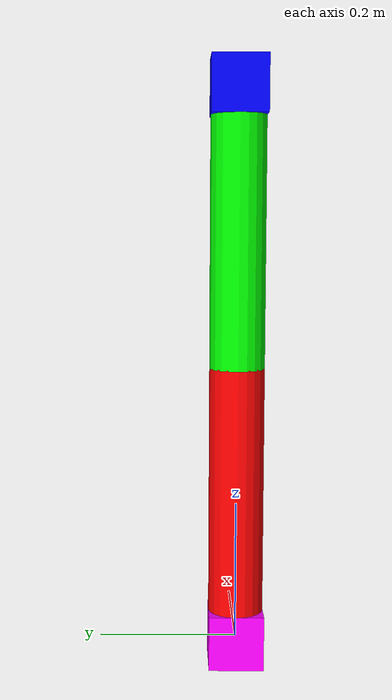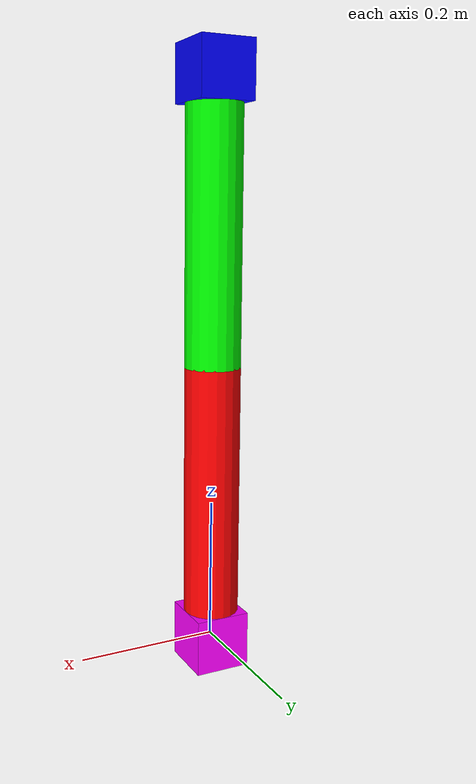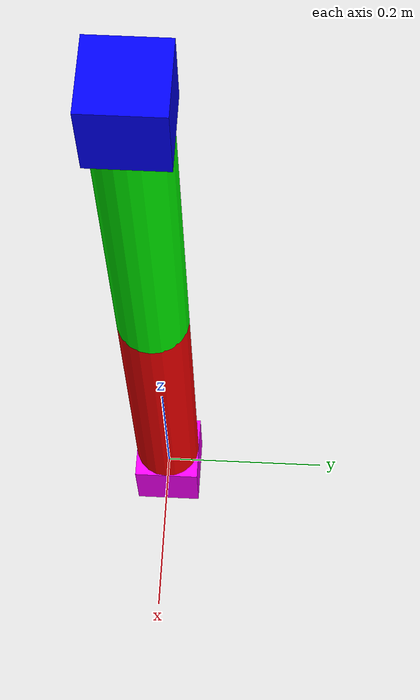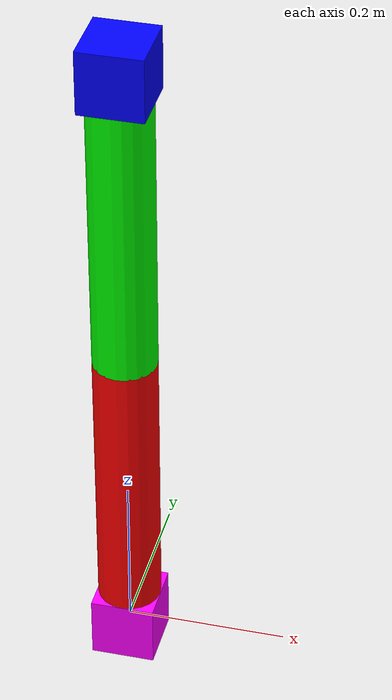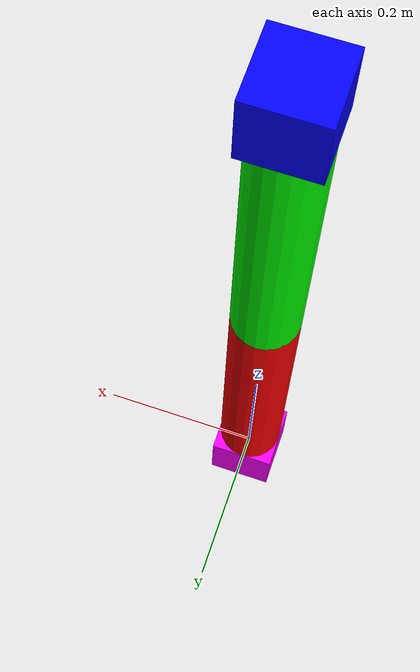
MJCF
<mujoco>
    <compiler angle="radian" meshdir="assets" autolimits="true"/>
    <option integrator="implicitfast" iterations="100"/>
    <default class="simple">
        <joint damping="1"/>
        <general gaintype="fixed" biastype="affine"/>
    </default>
    <worldbody>
        <body childclass="simple" name="base" pos="0 0 0">
            <geom type="box" size="0.04 0.04 0.04" pos="0 0 0" quat="1 1 0 0" rgba="1 0 1 1" contype="0" conaffinity="0" density="1"/>
            <body name="link1" pos="0 0 0">
                <joint name="joint1" type="hinge" axis="0 0 1" range="-3.1415 3.1415"/>
                <geom type="capsule" size="0.04 0.2" pos="0 0 0.2" rgba="1 0 0 1" contype="0" conaffinity="0" density="1"/>
                <body name="link2" pos="0 0 0.4">
                    <joint name="joint2" type="hinge" axis="1 0 0" range="-3.1415 3.1415"/>
                    <geom type="capsule" size="0.04 0.2" pos="0 0 0.2" rgba="0 1 0 1" contype="0" conaffinity="0" density="1"/>
                    <body name="link3" pos="0 0 0.4">
                        <joint name="joint3" type="hinge" axis="0 0 1" range="-3.1415 3.1415"/>
                        <geom type="box" size="0.04 0.04 0.04" pos="0 0 0" rgba="0 0 1 1" contype="0" conaffinity="0" density="1"/>
                        <site name="grip_site" pos="0 0 0"/>
                    </body>
                </body>
            </body>
        </body>
    </worldbody>
    <actuator>
        <position joint="joint1" ctrllimited="true" ctrlrange="-3.1415 3.1415"/>
        <position joint="joint2" ctrllimited="true" ctrlrange="-3.1415 3.1415"/>
        <position joint="joint3" ctrllimited="true" ctrlrange="-3.1415 3.1415"/>
    </actuator>
</mujoco>
